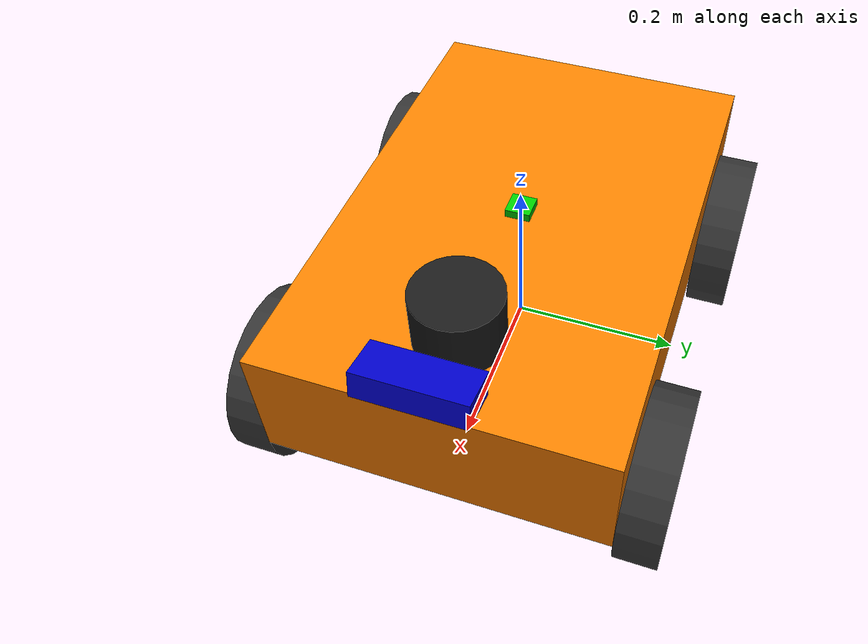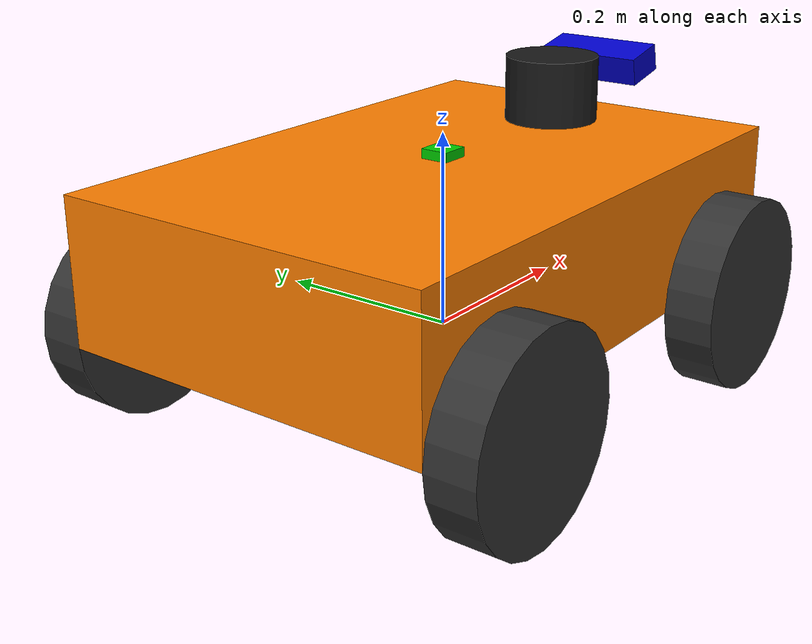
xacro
<?xml version="1.0"?>
<robot name="warehouse_amr" xmlns:xacro="http://www.ros.org/wiki/xacro">

  <xacro:property name="base_length"   value="0.6"/>
  <xacro:property name="base_width"    value="0.4"/>
  <xacro:property name="base_height"   value="0.15"/>
  <xacro:property name="base_mass"     value="20.0"/>
  <xacro:property name="wheel_radius"  value="0.1"/>
  <xacro:property name="wheel_width"   value="0.05"/>
  <xacro:property name="wheel_mass"    value="1.0"/>
  <xacro:property name="wheel_x_off"   value="0.2"/>
  <xacro:property name="wheel_y_off"   value="0.225"/>
  <xacro:property name="wheel_z_off"   value="${-base_height/2}"/>

  <xacro:macro name="box_inertia" params="m l w h">
    <inertial>
      <mass value="${m}"/>
      <inertia ixx="${m*(w*w+h*h)/12}" ixy="0" ixz="0"
               iyy="${m*(l*l+h*h)/12}" iyz="0"
               izz="${m*(l*l+w*w)/12}"/>
    </inertial>
  </xacro:macro>

  <xacro:macro name="cylinder_inertia" params="m r h">
    <inertial>
      <mass value="${m}"/>
      <inertia ixx="${m*(3*r*r+h*h)/12}" ixy="0" ixz="0"
               iyy="${m*(3*r*r+h*h)/12}" iyz="0"
               izz="${m*r*r/2}"/>
    </inertial>
  </xacro:macro>

  <xacro:macro name="wheel" params="name side pos">
    <link name="${name}_wheel">
      <visual>
        <geometry><cylinder radius="${wheel_radius}" length="${wheel_width}"/></geometry>
        <origin xyz="0 0 0" rpy="${pi/2} 0 0"/>
        <material name="dark_grey"><color rgba="0.2 0.2 0.2 1"/></material>
      </visual>
      <collision>
        <geometry><cylinder radius="${wheel_radius}" length="${wheel_width}"/></geometry>
        <origin xyz="0 0 0" rpy="${pi/2} 0 0"/>
      </collision>
      <xacro:cylinder_inertia m="${wheel_mass}" r="${wheel_radius}" h="${wheel_width}"/>
    </link>
    <joint name="${name}_wheel_joint" type="continuous">
      <parent link="base_link"/>
      <child  link="${name}_wheel"/>
      <origin xyz="${pos*wheel_x_off} ${side*wheel_y_off} ${wheel_z_off}" rpy="0 0 0"/>
      <axis xyz="0 1 0"/>
      <dynamics damping="0.1" friction="0.5"/>
    </joint>
  </xacro:macro>

  <link name="base_footprint"/>
  <joint name="base_footprint_joint" type="fixed">
    <parent link="base_footprint"/>
    <child  link="base_link"/>
    <origin xyz="0 0 ${wheel_radius}" rpy="0 0 0"/>
  </joint>

  <link name="base_link">
    <visual>
      <geometry><box size="${base_length} ${base_width} ${base_height}"/></geometry>
      <origin xyz="0 0 0" rpy="0 0 0"/>
      <material name="orange"><color rgba="1.0 0.5 0.0 1"/></material>
    </visual>
    <collision>
      <geometry><box size="${base_length} ${base_width} ${base_height}"/></geometry>
      <origin xyz="0 0 0" rpy="0 0 0"/>
    </collision>
    <xacro:box_inertia m="${base_mass}" l="${base_length}" w="${base_width}" h="${base_height}"/>
  </link>

  <xacro:wheel name="front_left"  side=" 1" pos=" 1"/>
  <xacro:wheel name="front_right" side="-1" pos=" 1"/>
  <xacro:wheel name="rear_left"   side=" 1" pos="-1"/>
  <xacro:wheel name="rear_right"  side="-1" pos="-1"/>

  <link name="lidar_link">
    <visual>
      <geometry><cylinder radius="0.05" length="0.07"/></geometry>
      <material name="black"><color rgba="0.1 0.1 0.1 1"/></material>
    </visual>
  </link>
  <joint name="lidar_joint" type="fixed">
    <parent link="base_link"/>
    <child  link="lidar_link"/>
    <origin xyz="0.2 0 ${base_height/2 + 0.035}" rpy="0 0 0"/>
  </joint>

  <link name="imu_link">
    <visual>
      <geometry><box size="0.03 0.03 0.01"/></geometry>
      <material name="green"><color rgba="0.0 0.8 0.0 1"/></material>
    </visual>
  </link>
  <joint name="imu_joint" type="fixed">
    <parent link="base_link"/>
    <child  link="imu_link"/>
    <origin xyz="0 0 ${base_height/2 + 0.005}" rpy="0 0 0"/>
  </joint>

  <link name="depth_camera_link">
    <visual>
      <geometry><box size="0.05 0.12 0.03"/></geometry>
      <material name="blue"><color rgba="0.0 0.0 0.8 1"/></material>
    </visual>
  </link>
  <joint name="depth_camera_joint" type="fixed">
    <parent link="base_link"/>
    <child  link="depth_camera_link"/>
    <origin xyz="${base_length/2} 0 ${base_height/2 + 0.05}" rpy="0 -0.2094 0"/>
  </joint>

  <link name="depth_camera_optical_frame"/>
  <joint name="depth_camera_optical_joint" type="fixed">
    <parent link="depth_camera_link"/>
    <child  link="depth_camera_optical_frame"/>
    <origin xyz="0 0 0" rpy="0 0 0"/>
  </joint>

  <gazebo>
    <plugin filename="ignition-gazebo-diff-drive-system"
            name="ignition::gazebo::systems::DiffDrive">
      <left_joint>front_left_wheel_joint</left_joint>
      <left_joint>rear_left_wheel_joint</left_joint>
      <right_joint>front_right_wheel_joint</right_joint>
      <right_joint>rear_right_wheel_joint</right_joint>
      <wheel_separation>${2*wheel_y_off}</wheel_separation>
      <wheel_radius>${wheel_radius}</wheel_radius>
      <odom_publish_frequency>50</odom_publish_frequency>
      <topic>cmd_vel</topic>
      <odom_topic>odom</odom_topic>
      <frame_id>odom</frame_id>
      <child_frame_id>base_footprint</child_frame_id>
      <tf_topic>/tf</tf_topic>
    </plugin>
    <plugin filename="ignition-gazebo-joint-state-publisher-system"
            name="ignition::gazebo::systems::JointStatePublisher">
      <topic>joint_states</topic>
    </plugin>
    <plugin filename="ignition-gazebo-sensors-system"
            name="ignition::gazebo::systems::Sensors">
      <render_engine>ogre2</render_engine>
    </plugin>
  </gazebo>

  <gazebo reference="lidar_link">
    <sensor name="lidar" type="gpu_lidar">
      <topic>scan</topic>
      <frame_id>lidar_link</frame_id>
      <update_rate>10</update_rate>
      <lidar>
        <scan>
          <horizontal>
            <samples>360</samples>
            <resolution>1</resolution>
            <min_angle>-3.14159</min_angle>
            <max_angle>3.14159</max_angle>
          </horizontal>
        </scan>
        <range>
          <min>0.12</min>
          <max>10.0</max>
          <resolution>0.01</resolution>
        </range>
        <noise><type>gaussian</type><mean>0.0</mean><stddev>0.01</stddev></noise>
      </lidar>
      <always_on>true</always_on>
      <visualize>true</visualize>
    </sensor>
  </gazebo>

  <gazebo reference="imu_link">
    <sensor name="imu_sensor" type="imu">
      <topic>imu/data</topic>
      <update_rate>100</update_rate>
      <imu>
        <angular_velocity>
          <x><noise type="gaussian"><mean>0</mean><stddev>0.009</stddev></noise></x>
          <y><noise type="gaussian"><mean>0</mean><stddev>0.009</stddev></noise></y>
          <z><noise type="gaussian"><mean>0</mean><stddev>0.009</stddev></noise></z>
        </angular_velocity>
        <linear_acceleration>
          <x><noise type="gaussian"><mean>0</mean><stddev>0.021</stddev></noise></x>
          <y><noise type="gaussian"><mean>0</mean><stddev>0.021</stddev></noise></y>
          <z><noise type="gaussian"><mean>0</mean><stddev>0.021</stddev></noise></z>
        </linear_acceleration>
      </imu>
      <always_on>true</always_on>
    </sensor>
  </gazebo>

  <gazebo reference="depth_camera_link">
    <sensor name="depth_camera" type="rgbd_camera">
      <topic>depth_camera</topic>
      <update_rate>30</update_rate>
      <camera>
        <horizontal_fov>1.047</horizontal_fov>
        <image>
          <width>640</width>
          <height>480</height>
          <format>R8G8B8</format>
        </image>
        <clip><near>0.1</near><far>8.0</far></clip>
        <noise><type>gaussian</type><mean>0.0</mean><stddev>0.007</stddev></noise>
      </camera>
      <always_on>true</always_on>
      <visualize>true</visualize>
    </sensor>
  </gazebo>

</robot>
